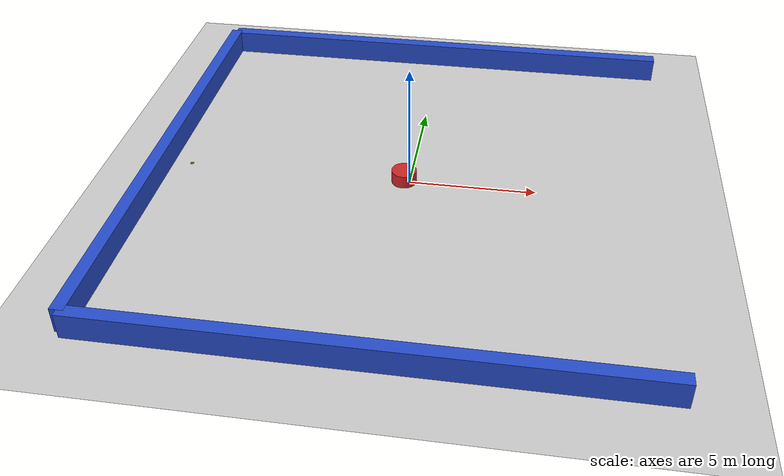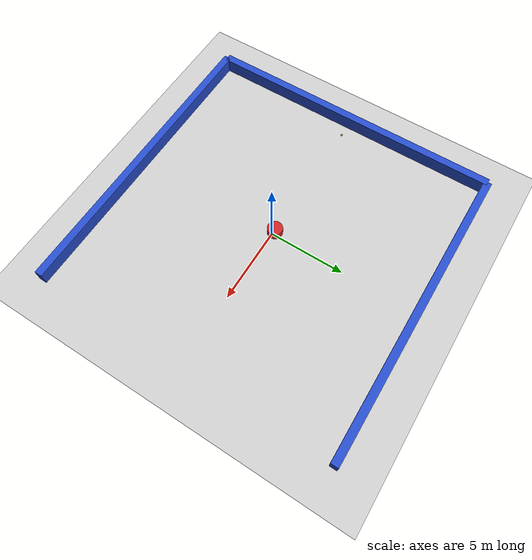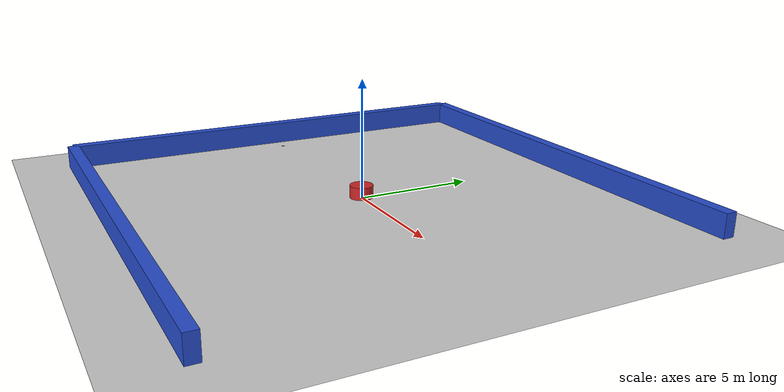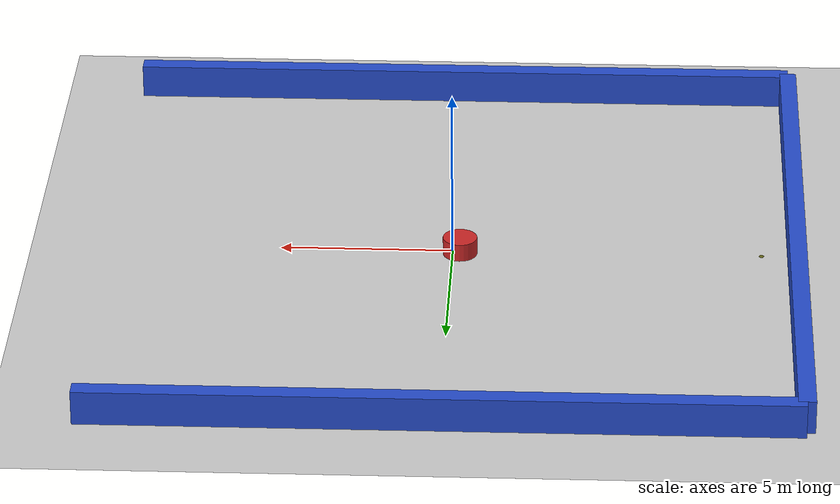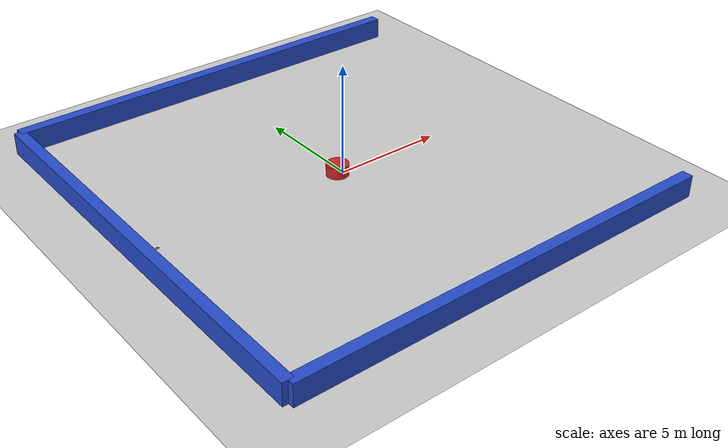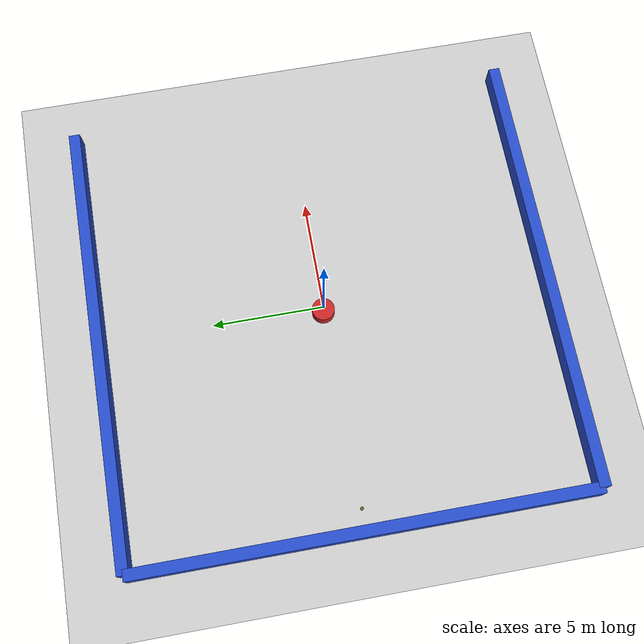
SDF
<sdf version="1.6">
   <world name="default">
      <include>
         <uri>model://ground_plane</uri>
      </include>
      <include>
         <uri>model://sun</uri>
      </include>

    <model name="mediumlibobs_68">
      <static>1</static>
      <pose frame="">-0.225000 0.075000 0.000000 0.000000 0.000000 0.000000</pose>
      <link name="link">
        <inertial>
          <mass>1</mass>
          <inertia>
            <ixx>0.145833</ixx>
            <ixy>0</ixy>
            <ixz>0</ixz>
            <iyy>0.145833</iyy>
            <iyz>0</iyz>
            <izz>0.125</izz>
          </inertia>
        </inertial>
        <collision name="collision">
           <geometry>
            <cylinder>
                <radius>0.5000</radius>
                 <length> 1 </length>
            </cylinder>
          </geometry>
           <surface>
            <contact>
              <ode />
            </contact>
            <bounce />
            <friction>
              <torsional>
                <ode />
              </torsional>
              <ode />
            </friction>
          </surface>
        </collision>
        <visual name="visual">
           <geometry>
            <cylinder>
                <radius>0.5000</radius>
                 <length> 1 </length>
            </cylinder>
          </geometry>
          <material>
            <script>
              <name>Gazebo/Red</name>
              <uri>file://media/materials/scripts/gazebo.material</uri>
            </script>
          </material>
        </visual>
        <self_collide>0</self_collide>
        <kinematic>0</kinematic>
        <gravity>1</gravity>
      </link>
      <plugin name="mediumlibobs_68" filename="mediumlibobs_68.so" />
    </model>

    <model name="hardlibobs_49">
      <static>1</static>
      <pose frame="">-0.225000 0.075000 0.000000 0.000000 0.000000 0.000000</pose>
      <link name="link">
        <inertial>
          <mass>1</mass>
          <inertia>
            <ixx>0.145833</ixx>
            <ixy>0</ixy>
            <ixz>0</ixz>
            <iyy>0.145833</iyy>
            <iyz>0</iyz>
            <izz>0.125</izz>
          </inertia>
        </inertial>
        <collision name="collision">
           <geometry>
            <cylinder>
                <radius>0.5000</radius>
                 <length> 1 </length>
            </cylinder>
          </geometry>
           <surface>
            <contact>
              <ode />
            </contact>
            <bounce />
            <friction>
              <torsional>
                <ode />
              </torsional>
              <ode />
            </friction>
          </surface>
        </collision>
        <visual name="visual">
           <geometry>
            <cylinder>
                <radius>0.5000</radius>
                 <length> 1 </length>
            </cylinder>
          </geometry>
          <material>
            <script>
              <name>Gazebo/Red</name>
              <uri>file://media/materials/scripts/gazebo.material</uri>
            </script>
          </material>
        </visual>
        <self_collide>0</self_collide>
        <kinematic>0</kinematic>
        <gravity>1</gravity>
      </link>
      <plugin name="hardlibobs_49" filename="hardlibobs_49.so" />
    </model>

    <model name="mediumlibobs_60">
      <static>1</static>
      <pose frame="">-0.225000 0.075000 0.000000 0.000000 0.000000 0.000000</pose>
      <link name="link">
        <inertial>
          <mass>1</mass>
          <inertia>
            <ixx>0.145833</ixx>
            <ixy>0</ixy>
            <ixz>0</ixz>
            <iyy>0.145833</iyy>
            <iyz>0</iyz>
            <izz>0.125</izz>
          </inertia>
        </inertial>
        <collision name="collision">
           <geometry>
            <cylinder>
                <radius>0.5000</radius>
                 <length> 1 </length>
            </cylinder>
          </geometry>
           <surface>
            <contact>
              <ode />
            </contact>
            <bounce />
            <friction>
              <torsional>
                <ode />
              </torsional>
              <ode />
            </friction>
          </surface>
        </collision>
        <visual name="visual">
           <geometry>
            <cylinder>
                <radius>0.5000</radius>
                 <length> 1 </length>
            </cylinder>
          </geometry>
          <material>
            <script>
              <name>Gazebo/Red</name>
              <uri>file://media/materials/scripts/gazebo.material</uri>
            </script>
          </material>
        </visual>
        <self_collide>0</self_collide>
        <kinematic>0</kinematic>
        <gravity>1</gravity>
      </link>
      <plugin name="mediumlibobs_60" filename="mediumlibobs_60.so" />
    </model>

    <model name="hardlibobs_137">
      <static>1</static>
      <pose frame="">-0.225000 0.075000 0.000000 0.000000 0.000000 0.000000</pose>
      <link name="link">
        <inertial>
          <mass>1</mass>
          <inertia>
            <ixx>0.145833</ixx>
            <ixy>0</ixy>
            <ixz>0</ixz>
            <iyy>0.145833</iyy>
            <iyz>0</iyz>
            <izz>0.125</izz>
          </inertia>
        </inertial>
        <collision name="collision">
           <geometry>
            <cylinder>
                <radius>0.5000</radius>
                 <length> 1 </length>
            </cylinder>
          </geometry>
           <surface>
            <contact>
              <ode />
            </contact>
            <bounce />
            <friction>
              <torsional>
                <ode />
              </torsional>
              <ode />
            </friction>
          </surface>
        </collision>
        <visual name="visual">
           <geometry>
            <cylinder>
                <radius>0.5000</radius>
                 <length> 1 </length>
            </cylinder>
          </geometry>
          <material>
            <script>
              <name>Gazebo/Red</name>
              <uri>file://media/materials/scripts/gazebo.material</uri>
            </script>
          </material>
        </visual>
        <self_collide>0</self_collide>
        <kinematic>0</kinematic>
        <gravity>1</gravity>
      </link>
      <plugin name="hardlibobs_137" filename="hardlibobs_137.so" />
    </model>

    <model name="mediumlibobs_188">
      <static>1</static>
      <pose frame="">-0.225000 0.075000 0.000000 0.000000 0.000000 0.000000</pose>
      <link name="link">
        <inertial>
          <mass>1</mass>
          <inertia>
            <ixx>0.145833</ixx>
            <ixy>0</ixy>
            <ixz>0</ixz>
            <iyy>0.145833</iyy>
            <iyz>0</iyz>
            <izz>0.125</izz>
          </inertia>
        </inertial>
        <collision name="collision">
           <geometry>
            <cylinder>
                <radius>0.5000</radius>
                 <length> 1 </length>
            </cylinder>
          </geometry>
           <surface>
            <contact>
              <ode />
            </contact>
            <bounce />
            <friction>
              <torsional>
                <ode />
              </torsional>
              <ode />
            </friction>
          </surface>
        </collision>
        <visual name="visual">
           <geometry>
            <cylinder>
                <radius>0.5000</radius>
                 <length> 1 </length>
            </cylinder>
          </geometry>
          <material>
            <script>
              <name>Gazebo/Red</name>
              <uri>file://media/materials/scripts/gazebo.material</uri>
            </script>
          </material>
        </visual>
        <self_collide>0</self_collide>
        <kinematic>0</kinematic>
        <gravity>1</gravity>
      </link>
      <plugin name="mediumlibobs_188" filename="mediumlibobs_188.so" />
    </model>

    <model name="hardlibobs_114">
      <static>1</static>
      <pose frame="">-0.225000 0.075000 0.000000 0.000000 0.000000 0.000000</pose>
      <link name="link">
        <inertial>
          <mass>1</mass>
          <inertia>
            <ixx>0.145833</ixx>
            <ixy>0</ixy>
            <ixz>0</ixz>
            <iyy>0.145833</iyy>
            <iyz>0</iyz>
            <izz>0.125</izz>
          </inertia>
        </inertial>
        <collision name="collision">
           <geometry>
            <cylinder>
                <radius>0.5000</radius>
                 <length> 1 </length>
            </cylinder>
          </geometry>
           <surface>
            <contact>
              <ode />
            </contact>
            <bounce />
            <friction>
              <torsional>
                <ode />
              </torsional>
              <ode />
            </friction>
          </surface>
        </collision>
        <visual name="visual">
           <geometry>
            <cylinder>
                <radius>0.5000</radius>
                 <length> 1 </length>
            </cylinder>
          </geometry>
          <material>
            <script>
              <name>Gazebo/Red</name>
              <uri>file://media/materials/scripts/gazebo.material</uri>
            </script>
          </material>
        </visual>
        <self_collide>0</self_collide>
        <kinematic>0</kinematic>
        <gravity>1</gravity>
      </link>
      <plugin name="hardlibobs_114" filename="hardlibobs_114.so" />
    </model>

    <model name="mediumlibobs_114">
      <static>1</static>
      <pose frame="">-0.225000 0.075000 0.000000 0.000000 0.000000 0.000000</pose>
      <link name="link">
        <inertial>
          <mass>1</mass>
          <inertia>
            <ixx>0.145833</ixx>
            <ixy>0</ixy>
            <ixz>0</ixz>
            <iyy>0.145833</iyy>
            <iyz>0</iyz>
            <izz>0.125</izz>
          </inertia>
        </inertial>
        <collision name="collision">
           <geometry>
            <cylinder>
                <radius>0.5000</radius>
                 <length> 1 </length>
            </cylinder>
          </geometry>
           <surface>
            <contact>
              <ode />
            </contact>
            <bounce />
            <friction>
              <torsional>
                <ode />
              </torsional>
              <ode />
            </friction>
          </surface>
        </collision>
        <visual name="visual">
           <geometry>
            <cylinder>
                <radius>0.5000</radius>
                 <length> 1 </length>
            </cylinder>
          </geometry>
          <material>
            <script>
              <name>Gazebo/Red</name>
              <uri>file://media/materials/scripts/gazebo.material</uri>
            </script>
          </material>
        </visual>
        <self_collide>0</self_collide>
        <kinematic>0</kinematic>
        <gravity>1</gravity>
      </link>
      <plugin name="mediumlibobs_114" filename="mediumlibobs_114.so" />
    </model>

    <model name="mediumlibobs_35">
      <static>1</static>
      <pose frame="">-0.225000 0.075000 0.000000 0.000000 0.000000 0.000000</pose>
      <link name="link">
        <inertial>
          <mass>1</mass>
          <inertia>
            <ixx>0.145833</ixx>
            <ixy>0</ixy>
            <ixz>0</ixz>
            <iyy>0.145833</iyy>
            <iyz>0</iyz>
            <izz>0.125</izz>
          </inertia>
        </inertial>
        <collision name="collision">
           <geometry>
            <cylinder>
                <radius>0.5000</radius>
                 <length> 1 </length>
            </cylinder>
          </geometry>
           <surface>
            <contact>
              <ode />
            </contact>
            <bounce />
            <friction>
              <torsional>
                <ode />
              </torsional>
              <ode />
            </friction>
          </surface>
        </collision>
        <visual name="visual">
           <geometry>
            <cylinder>
                <radius>0.5000</radius>
                 <length> 1 </length>
            </cylinder>
          </geometry>
          <material>
            <script>
              <name>Gazebo/Red</name>
              <uri>file://media/materials/scripts/gazebo.material</uri>
            </script>
          </material>
        </visual>
        <self_collide>0</self_collide>
        <kinematic>0</kinematic>
        <gravity>1</gravity>
      </link>
      <plugin name="mediumlibobs_35" filename="mediumlibobs_35.so" />
    </model>

    <model name="hardlibobs_184">
      <static>1</static>
      <pose frame="">-0.225000 0.075000 0.000000 0.000000 0.000000 0.000000</pose>
      <link name="link">
        <inertial>
          <mass>1</mass>
          <inertia>
            <ixx>0.145833</ixx>
            <ixy>0</ixy>
            <ixz>0</ixz>
            <iyy>0.145833</iyy>
            <iyz>0</iyz>
            <izz>0.125</izz>
          </inertia>
        </inertial>
        <collision name="collision">
           <geometry>
            <cylinder>
                <radius>0.5000</radius>
                 <length> 1 </length>
            </cylinder>
          </geometry>
           <surface>
            <contact>
              <ode />
            </contact>
            <bounce />
            <friction>
              <torsional>
                <ode />
              </torsional>
              <ode />
            </friction>
          </surface>
        </collision>
        <visual name="visual">
           <geometry>
            <cylinder>
                <radius>0.5000</radius>
                 <length> 1 </length>
            </cylinder>
          </geometry>
          <material>
            <script>
              <name>Gazebo/Red</name>
              <uri>file://media/materials/scripts/gazebo.material</uri>
            </script>
          </material>
        </visual>
        <self_collide>0</self_collide>
        <kinematic>0</kinematic>
        <gravity>1</gravity>
      </link>
      <plugin name="hardlibobs_184" filename="hardlibobs_184.so" />
    </model>

    <model name="mediumlibobs_25">
      <static>1</static>
      <pose frame="">-0.225000 0.075000 0.000000 0.000000 0.000000 0.000000</pose>
      <link name="link">
        <inertial>
          <mass>1</mass>
          <inertia>
            <ixx>0.145833</ixx>
            <ixy>0</ixy>
            <ixz>0</ixz>
            <iyy>0.145833</iyy>
            <iyz>0</iyz>
            <izz>0.125</izz>
          </inertia>
        </inertial>
        <collision name="collision">
           <geometry>
            <cylinder>
                <radius>0.5000</radius>
                 <length> 1 </length>
            </cylinder>
          </geometry>
           <surface>
            <contact>
              <ode />
            </contact>
            <bounce />
            <friction>
              <torsional>
                <ode />
              </torsional>
              <ode />
            </friction>
          </surface>
        </collision>
        <visual name="visual">
           <geometry>
            <cylinder>
                <radius>0.5000</radius>
                 <length> 1 </length>
            </cylinder>
          </geometry>
          <material>
            <script>
              <name>Gazebo/Red</name>
              <uri>file://media/materials/scripts/gazebo.material</uri>
            </script>
          </material>
        </visual>
        <self_collide>0</self_collide>
        <kinematic>0</kinematic>
        <gravity>1</gravity>
      </link>
      <plugin name="mediumlibobs_25" filename="mediumlibobs_25.so" />
    </model>

    <model name="hardlibobs_176">
      <static>1</static>
      <pose frame="">-0.225000 0.075000 0.000000 0.000000 0.000000 0.000000</pose>
      <link name="link">
        <inertial>
          <mass>1</mass>
          <inertia>
            <ixx>0.145833</ixx>
            <ixy>0</ixy>
            <ixz>0</ixz>
            <iyy>0.145833</iyy>
            <iyz>0</iyz>
            <izz>0.125</izz>
          </inertia>
        </inertial>
        <collision name="collision">
           <geometry>
            <cylinder>
                <radius>0.5000</radius>
                 <length> 1 </length>
            </cylinder>
          </geometry>
           <surface>
            <contact>
              <ode />
            </contact>
            <bounce />
            <friction>
              <torsional>
                <ode />
              </torsional>
              <ode />
            </friction>
          </surface>
        </collision>
        <visual name="visual">
           <geometry>
            <cylinder>
                <radius>0.5000</radius>
                 <length> 1 </length>
            </cylinder>
          </geometry>
          <material>
            <script>
              <name>Gazebo/Red</name>
              <uri>file://media/materials/scripts/gazebo.material</uri>
            </script>
          </material>
        </visual>
        <self_collide>0</self_collide>
        <kinematic>0</kinematic>
        <gravity>1</gravity>
      </link>
      <plugin name="hardlibobs_176" filename="hardlibobs_176.so" />
    </model>

    <model name="hardlibobs_118">
      <static>1</static>
      <pose frame="">-0.225000 0.075000 0.000000 0.000000 0.000000 0.000000</pose>
      <link name="link">
        <inertial>
          <mass>1</mass>
          <inertia>
            <ixx>0.145833</ixx>
            <ixy>0</ixy>
            <ixz>0</ixz>
            <iyy>0.145833</iyy>
            <iyz>0</iyz>
            <izz>0.125</izz>
          </inertia>
        </inertial>
        <collision name="collision">
           <geometry>
            <cylinder>
                <radius>0.5000</radius>
                 <length> 1 </length>
            </cylinder>
          </geometry>
           <surface>
            <contact>
              <ode />
            </contact>
            <bounce />
            <friction>
              <torsional>
                <ode />
              </torsional>
              <ode />
            </friction>
          </surface>
        </collision>
        <visual name="visual">
           <geometry>
            <cylinder>
                <radius>0.5000</radius>
                 <length> 1 </length>
            </cylinder>
          </geometry>
          <material>
            <script>
              <name>Gazebo/Red</name>
              <uri>file://media/materials/scripts/gazebo.material</uri>
            </script>
          </material>
        </visual>
        <self_collide>0</self_collide>
        <kinematic>0</kinematic>
        <gravity>1</gravity>
      </link>
      <plugin name="hardlibobs_118" filename="hardlibobs_118.so" />
    </model>

    <model name="hardlibobs_147">
      <static>1</static>
      <pose frame="">-0.225000 0.075000 0.000000 0.000000 0.000000 0.000000</pose>
      <link name="link">
        <inertial>
          <mass>1</mass>
          <inertia>
            <ixx>0.145833</ixx>
            <ixy>0</ixy>
            <ixz>0</ixz>
            <iyy>0.145833</iyy>
            <iyz>0</iyz>
            <izz>0.125</izz>
          </inertia>
        </inertial>
        <collision name="collision">
           <geometry>
            <cylinder>
                <radius>0.5000</radius>
                 <length> 1 </length>
            </cylinder>
          </geometry>
           <surface>
            <contact>
              <ode />
            </contact>
            <bounce />
            <friction>
              <torsional>
                <ode />
              </torsional>
              <ode />
            </friction>
          </surface>
        </collision>
        <visual name="visual">
           <geometry>
            <cylinder>
                <radius>0.5000</radius>
                 <length> 1 </length>
            </cylinder>
          </geometry>
          <material>
            <script>
              <name>Gazebo/Red</name>
              <uri>file://media/materials/scripts/gazebo.material</uri>
            </script>
          </material>
        </visual>
        <self_collide>0</self_collide>
        <kinematic>0</kinematic>
        <gravity>1</gravity>
      </link>
      <plugin name="hardlibobs_147" filename="hardlibobs_147.so" />
    </model>

    <model name="mediumlibobs_64">
      <static>1</static>
      <pose frame="">-0.225000 0.075000 0.000000 0.000000 0.000000 0.000000</pose>
      <link name="link">
        <inertial>
          <mass>1</mass>
          <inertia>
            <ixx>0.145833</ixx>
            <ixy>0</ixy>
            <ixz>0</ixz>
            <iyy>0.145833</iyy>
            <iyz>0</iyz>
            <izz>0.125</izz>
          </inertia>
        </inertial>
        <collision name="collision">
           <geometry>
            <cylinder>
                <radius>0.5000</radius>
                 <length> 1 </length>
            </cylinder>
          </geometry>
           <surface>
            <contact>
              <ode />
            </contact>
            <bounce />
            <friction>
              <torsional>
                <ode />
              </torsional>
              <ode />
            </friction>
          </surface>
        </collision>
        <visual name="visual">
           <geometry>
            <cylinder>
                <radius>0.5000</radius>
                 <length> 1 </length>
            </cylinder>
          </geometry>
          <material>
            <script>
              <name>Gazebo/Red</name>
              <uri>file://media/materials/scripts/gazebo.material</uri>
            </script>
          </material>
        </visual>
        <self_collide>0</self_collide>
        <kinematic>0</kinematic>
        <gravity>1</gravity>
      </link>
      <plugin name="mediumlibobs_64" filename="mediumlibobs_64.so" />
    </model>

      <model name="back_wall">
      <static>1</static>\   <pose frame="">-10 0 .5 0 0 0</pose>        <link name="box_link">

	<collision name="collision">
            <geometry>
              <box>
                <size>.5 20 1</size>
              </box>
            </geometry>
           <surface>
            <contact>
              <ode />
            </contact>
            <bounce />
            <friction>
              <torsional>
                <ode />
              </torsional>
              <ode />
            </friction>
          </surface>
        </collision>

          <visual name="visual">
            <geometry>
              <box>
                <size>.5 20 1</size>
              </box>
            </geometry>
          <material>
                 <script>
                     <name>Gazebo/Blue</name>
                         <uri>file://media/materials/scripts/gazebo.material</uri>
                         </script>
                     </material>
          </visual>
        </link>
      </model>
      <model name="top_wall">
      <static>1</static>
       <pose frame="">0 10 .5 0 0 0</pose>        <link name="box_link">

	<collision name="collision">
           <geometry>
              <box>
                <size>20 .5 1</size>
              </box>
            </geometry>
           <surface>
            <contact>
              <ode />
            </contact>
            <bounce />
            <friction>
              <torsional>
                <ode />
              </torsional>
              <ode />
            </friction>
          </surface>
        </collision>
          <visual name="visual">
            <geometry>
              <box>
                <size>20 .5 1</size>
              </box>
            </geometry>
          <material>
                 <script>
                     <name>Gazebo/Blue</name>
                         <uri>file://media/materials/scripts/gazebo.material</uri>
                         </script>
                     </material>
          </visual>
        </link>
      </model>
      <model name="bottom_wall">
      <static>1</static>
       <pose frame="">0 -10 .5 0 0 0</pose>        <link name="box_link">
	<collision name="collision">
            <geometry>
              <box>
                <size>20 .5 1</size>
              </box>
            </geometry>
           <surface>
            <contact>
              <ode />
            </contact>
            <bounce />
            <friction>
              <torsional>
                <ode />
              </torsional>
              <ode />
            </friction>
          </surface>
        </collision>
          <visual name="visual">
            <geometry>
              <box>
                <size>20 .5 1</size>
              </box>
            </geometry>
          <material>
                 <script>
                     <name>Gazebo/Blue</name>
                         <uri>file://media/materials/scripts/gazebo.material</uri>
                         </script>
                     </material>
          </visual>
        </link>
      </model>
   <model name="goal"><static>1</static><pose frame="">-9.00000 0.000000 0.000000 0.000000 0.000000 0.000000</pose><link name="link"><inertial><mass>1</mass><inertia><ixx>0.145833</ixx><ixy>0</ixy><ixz>0</ixz><iyy>0.145833</iyy><iyz>0</iyz><izz>0.125</izz></inertia></inertial><collision name="collision"><geometry><cylinder><radius>0.075000</radius><length>1</length></cylinder></geometry><max_contacts>10</max_contacts><surface><contact><ode /></contact><bounce /><friction><torsional><ode /></torsional><ode /></friction></surface></collision><visual name="visual"><geometry><cylinder><radius>0.075000</radius><length>0.001</length></cylinder></geometry><material><ambient>0 1 0 1</ambient><diffuse>0.4 0.4 0.1 1</diffuse></material><material><script><name>Gazebo/Grey</name><uri>file://media/materials/scripts/gazebo.material</uri></script></material></visual><self_collide>0</self_collide><kinematic>0</kinematic><gravity>0</gravity></link></model></world>
</sdf>
